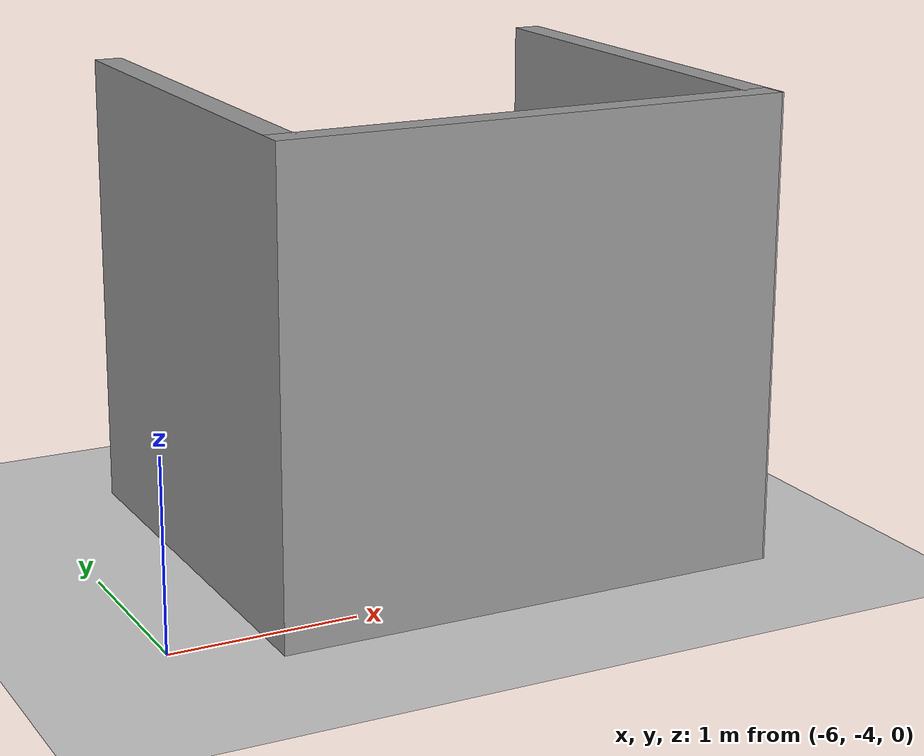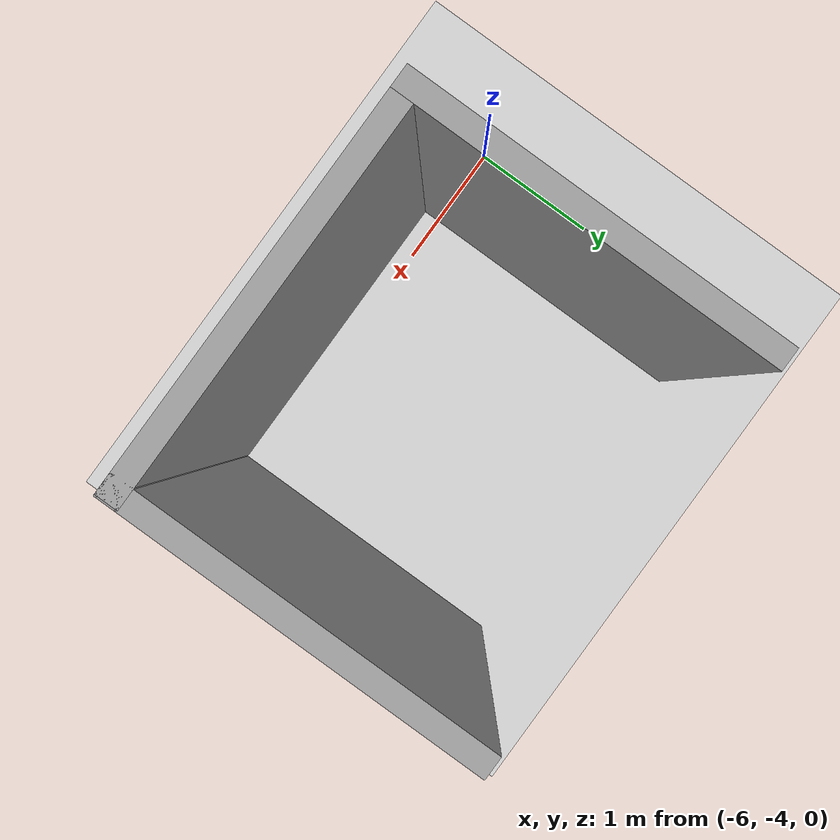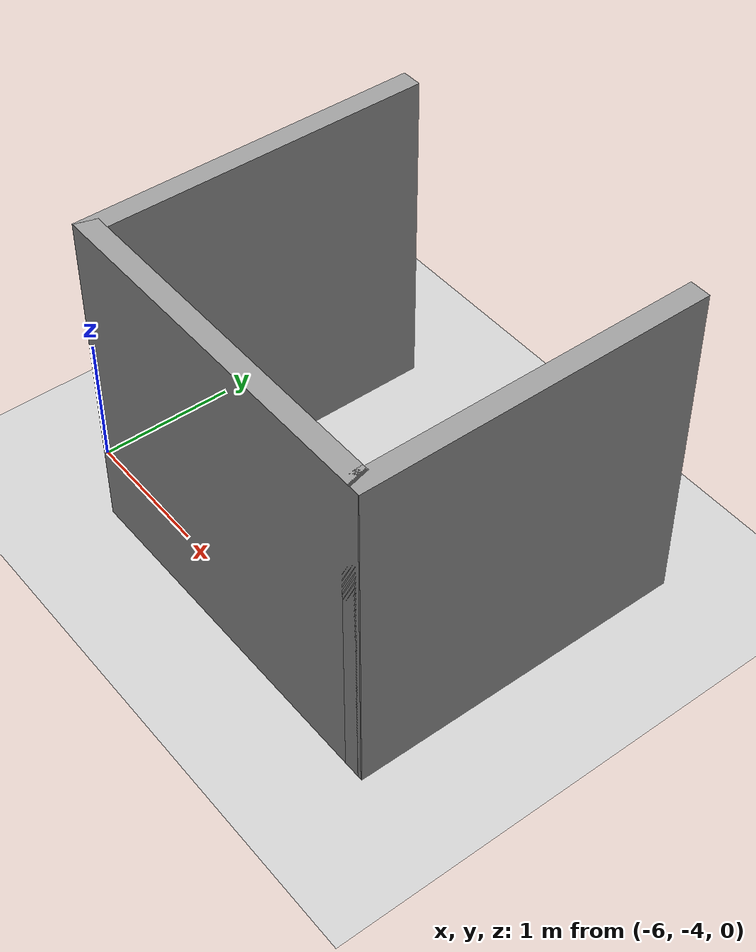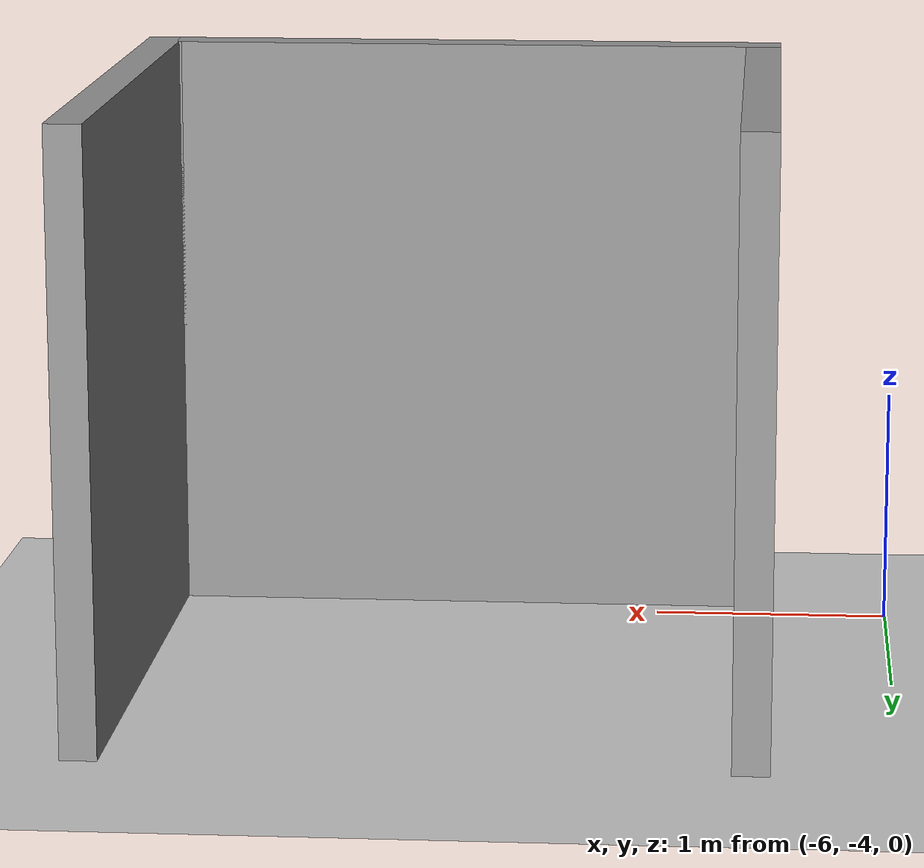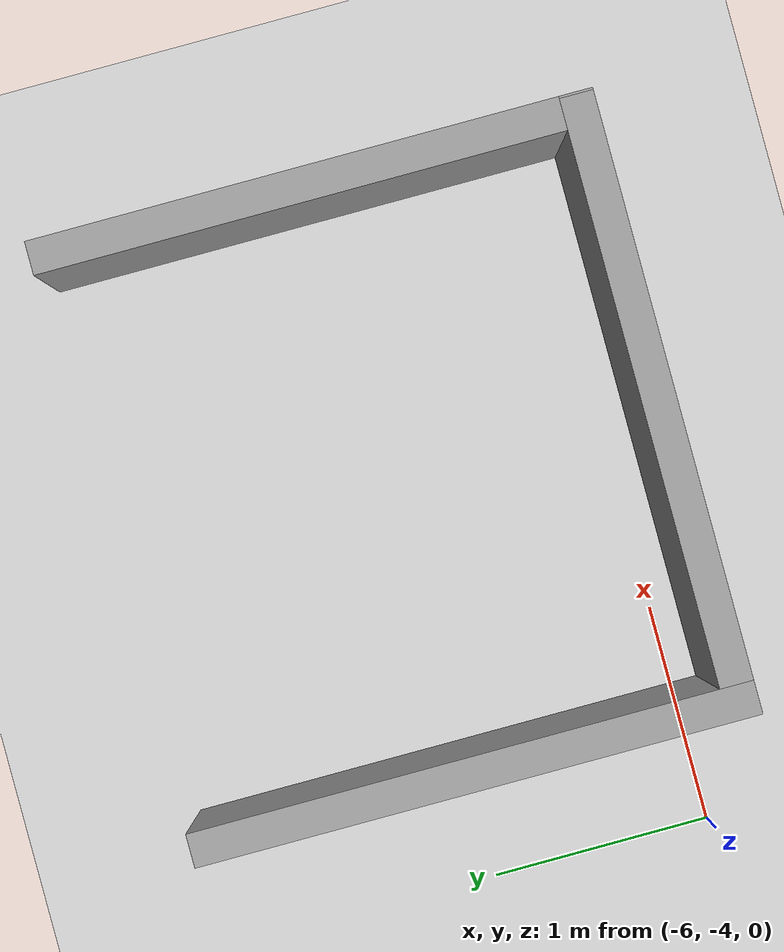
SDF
<sdf version="1.7">
 <world name="default">
  <light name="sun" type="directional">
   <pose>0 0 10 0 -0 0</pose>
   <diffuse>0.8 0.8 0.8 1</diffuse>
   <specular>0.2 0.2 0.2 1</specular>
   <attenuation>
    <range>1000</range>
    <constant>0.9</constant>
    <linear>0.01</linear>
    <quadratic>0.001</quadratic>
   </attenuation>
   <direction>-0.5 0.1 -0.9</direction>
   <spot><inner_angle>0</inner_angle><outer_angle>0</outer_angle><falloff>0</falloff></spot>
  </light>
  <model name="ground_plane">
   <static>1</static>
   <link name="link">
    <collision name="collision">
     <geometry><plane><normal>0 0 1</normal><size>100 100</size></plane></geometry>
     <surface><friction><ode><mu>100</mu><mu2>50</mu2></ode></friction></surface>
    </collision>
    <visual name="visual">
     <cast_shadows>0</cast_shadows>
     <geometry><plane><normal>0 0 1</normal><size>100 100</size></plane></geometry>
     <material>
      <script><uri>file://media/materials/scripts/gazebo.material</uri><name>Gazebo/Grey</name></script>
     </material>
    </visual>
   </link>
  </model>
  <gravity>0 0 -9.8</gravity>
  <magnetic_field>6e-06 2.3e-05 -4.2e-05</magnetic_field>
  <atmosphere type="adiabatic"/>
  <physics type="ode">
   <max_step_size>0.001</max_step_size>
   <real_time_factor>1</real_time_factor>
   <real_time_update_rate>1000</real_time_update_rate>
  </physics>
  <scene><ambient>0.4 0.4 0.4 1</ambient><background>0.7 0.7 0.7 1</background><shadows>1</shadows></scene>
  <audio><device>default</device></audio>
  <spherical_coordinates>
   <surface_model>EARTH_WGS84</surface_model>
   <latitude_deg>0</latitude_deg>
   <longitude_deg>0</longitude_deg>
   <elevation>0</elevation>
   <heading_deg>0</heading_deg>
  </spherical_coordinates>
  <model name="AC_TestWorld_1">
   <pose>-1.71259 -2.90936 0 0 -0 0</pose>
   <link name="Wall_1">
    <collision name="Wall_1_Collision">
     <geometry><box><size>2.5 0.15 2.5</size></box></geometry>
     <pose>0 0 1.25 0 -0 0</pose>
    </collision>
    <visual name="Wall_1_Visual">
     <pose>0 0 1.25 0 -0 0</pose>
     <geometry><box><size>2.5 0.15 2.5</size></box></geometry>
     <material>
      <script><uri>file://media/materials/scripts/gazebo.material</uri><name>Gazebo/Grey</name></script>
      <ambient>1 1 1 1</ambient>
     </material>
     <meta><layer>0</layer></meta>
    </visual>
    <pose>-3.7175 -0.1125 0 0 -0 -1.5708</pose>
   </link>
   <link name="Wall_2">
    <collision name="Wall_2_Collision">
     <geometry><box><size>2.75 0.15 2.5</size></box></geometry>
     <pose>0 0 1.25 0 -0 0</pose>
    </collision>
    <visual name="Wall_2_Visual">
     <pose>0 0 1.25 0 -0 0</pose>
     <geometry><box><size>2.75 0.15 2.5</size></box></geometry>
     <material>
      <script><uri>file://media/materials/scripts/gazebo.material</uri><name>Gazebo/Grey</name></script>
      <ambient>1 1 1 1</ambient>
     </material>
     <meta><layer>0</layer></meta>
    </visual>
    <pose>-2.4175 -1.2875 0 0 -0 0</pose>
   </link>
   <link name="Wall_3">
    <collision name="Wall_3_Collision">
     <geometry><box><size>0.16 0.15 2.5</size></box></geometry>
     <pose>0 0 1.25 0 -0 0</pose>
    </collision>
    <visual name="Wall_3_Visual">
     <pose>0 0 1.25 0 -0 0</pose>
     <geometry><box><size>0.16 0.15 2.5</size></box></geometry>
     <material>
      <script><uri>file://media/materials/scripts/gazebo.material</uri><name>Gazebo/Grey</name></script>
      <ambient>1 1 1 1</ambient>
     </material>
     <meta><layer>0</layer></meta>
    </visual>
    <pose>-1.1125 -1.2875 0 0 -0 0</pose>
   </link>
   <link name="Wall_4">
    <collision name="Wall_4_Collision">
     <geometry><box><size>2.5 0.15 2.5</size></box></geometry>
     <pose>0 0 1.25 0 -0 0</pose>
    </collision>
    <visual name="Wall_4_Visual">
     <pose>0 0 1.25 0 -0 0</pose>
     <geometry><box><size>2.5 0.15 2.5</size></box></geometry>
     <material>
      <script><uri>file://media/materials/scripts/gazebo.material</uri><name>Gazebo/Grey</name></script>
      <ambient>1 1 1 1</ambient>
     </material>
     <meta><layer>0</layer></meta>
    </visual>
    <pose>-1.1075 -0.1125 0 0 -0 1.5708</pose>
   </link>
   <static>1</static>
  </model>
 </world>
</sdf>
